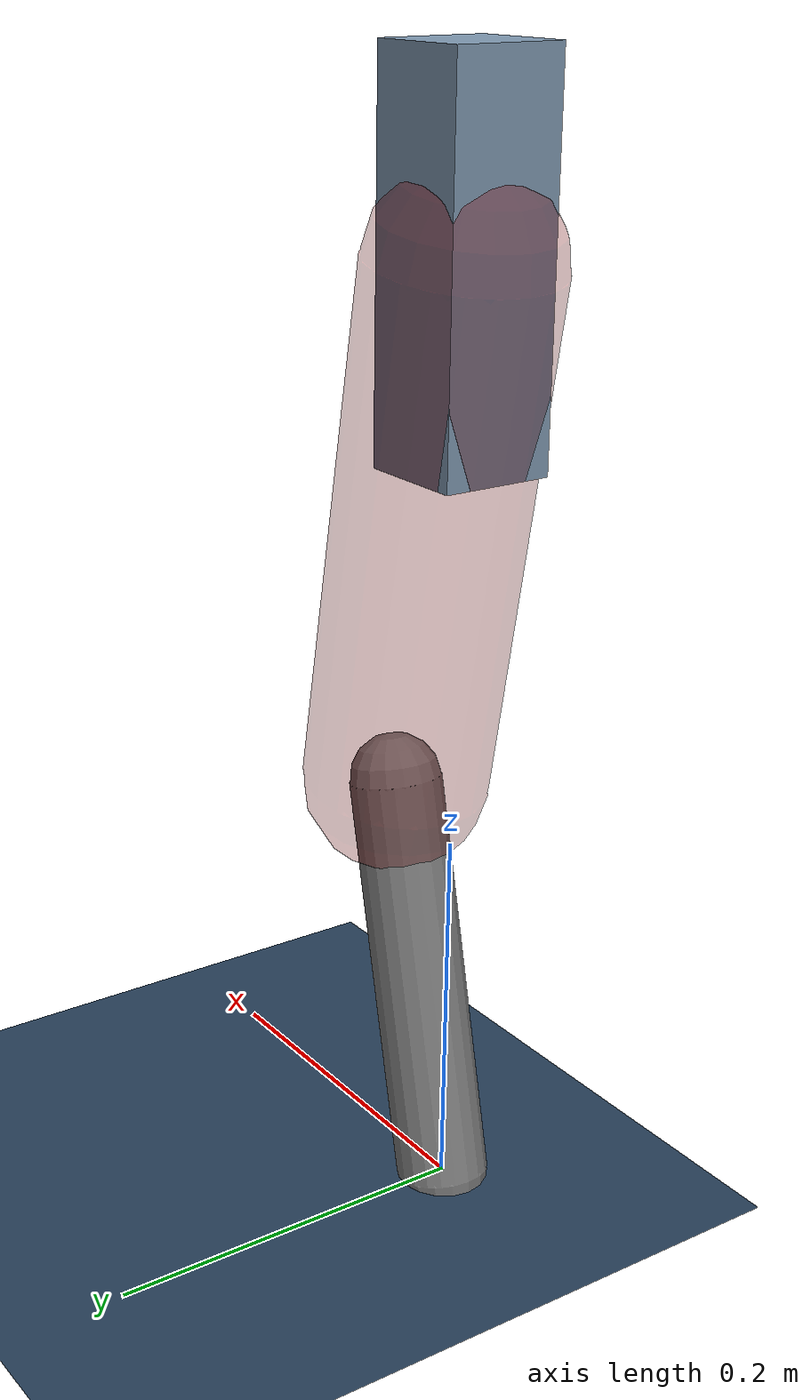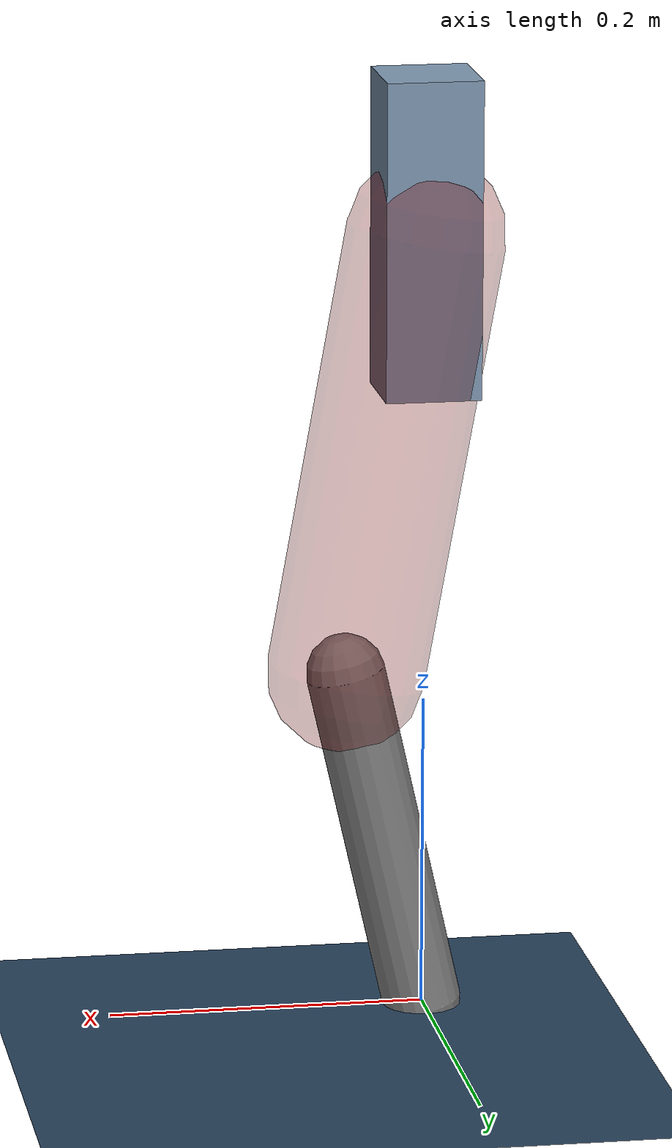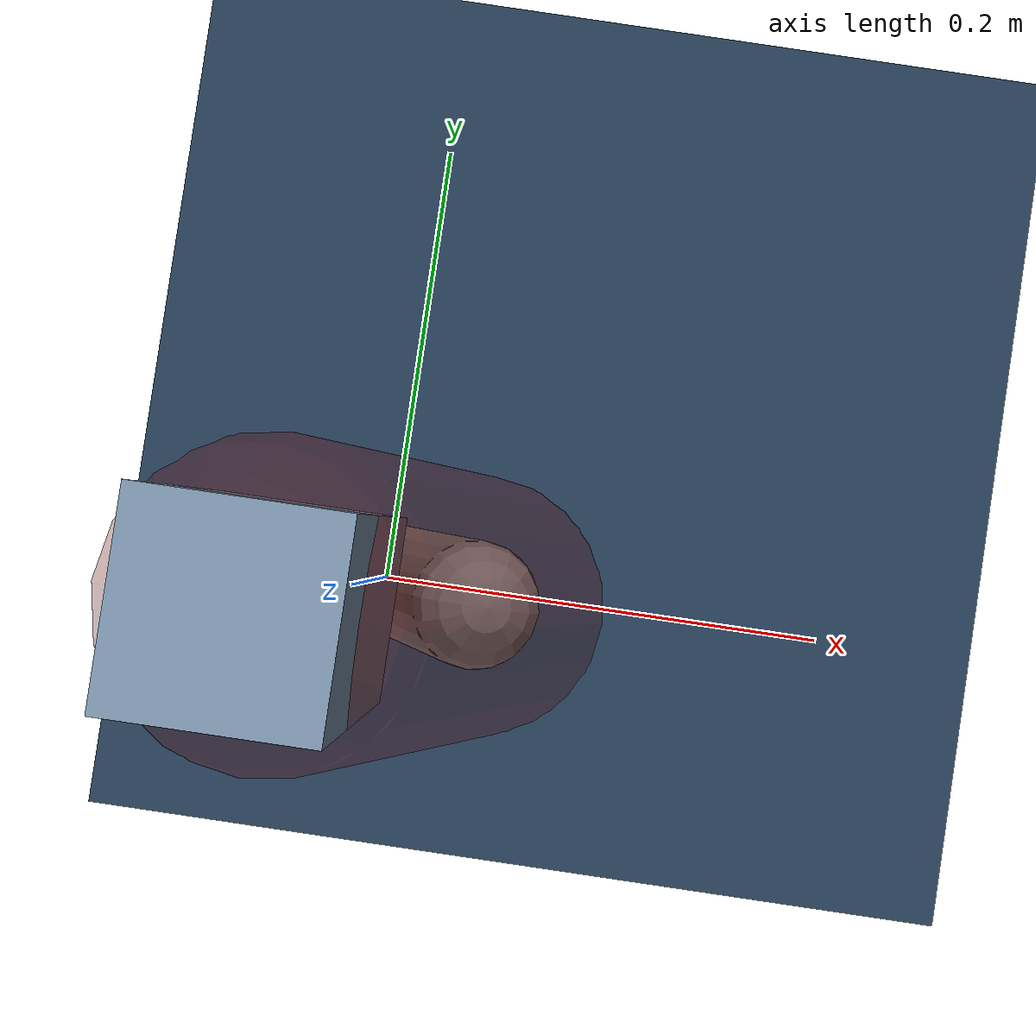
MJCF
<mujoco model="Hopper2D">
	<compiler inertiafromgeom="true" angle="radian" />
	<option timestep="0.001" integrator="implicit" cone="elliptic" solver="Newton" tolerance="1e-10" />

	<default>
		<geom contype="1" conaffinity="1" condim="3" friction="2 0.005 0.0001" solref="0.005 1" />
		<joint limited="true" damping="0.1" />
	</default>

	<asset>
		<texture name="skybox" type="skybox" builtin="gradient" rgb1=".4 .6 .8" rgb2="0 0 0" width="800" height="800" />
		<texture name="grid" type="2d" builtin="checker" rgb1=".1 .2 .3" rgb2=".2 .3 .4" width="300" height="300" mark="edge" markrgb=".2 .3 .4" />
		<material name="ground" texture="grid" texrepeat="1 1" texuniform="true" reflectance="0.1" />
		<material name="leg" rgba="0.5 0.6 0.7 1" />
	</asset>

	<worldbody>

		<geom name="floor" type="plane" size="5 5 0.25" material="ground" />

		<light directional="false" diffuse="0.8 0.8 0.8" specular="0.3 0.3 0.3" pos="0 0 2" dir="0 0 -1" />
		<light mode="targetbodycom" target="base" directional="false" diffuse="0.8 0.8 0.8" specular="0.3 0.3 0.3" pos="0 0 2" dir="0 0 -1" />

		<camera name="fixed" pos="0 -2 1" xyaxes="1 0 0 0 0 1" />
		<camera name="tracking" mode="trackcom" pos="0 -3 1" />

		<body name="root" pos="0 0 0.4989148613005415">
			<joint name="slide_x" type="slide" axis="1 0 0" range="-100 100" />
			<joint name="slide_z" type="slide" axis="0 0 1" range="0 10" />

			<body name="base" pos="0 0 0">
				<geom name="torso" type="box" size="0.03 0.03 0.1" mass="2.494" material="leg" />

				<body name="link1" pos="0 0 0" euler="0 1.3944410896917567 0">
					<joint type="hinge" axis="0 -1 0" pos="0 0 0" name="hinge1" limited="true" range="-3.14 3.14" stiffness="0" damping="0.1" />
					<geom name="thigh" type="capsule" fromto="0 0 0 0.28408245924098785 0 0" size="0.05" rgba="0.5 0 0 0.3" mass="0.9460143940265685" />

					<body name="link2" pos="0.28408245924098785 0 0" euler="0 0.3998890181151422 0">
						<joint type="hinge" axis="0 -1 0" pos="0 0 0" name="hinge2" limited="true" range="-3.14 3.14" stiffness="0" damping="0.1" />
						<geom name="shank" type="capsule" fromto="0 0 0 0.2248324020595537 0 0" size="0.025" mass="0.421665921647643" />

					</body>
				</body>
			</body>
		</body>
	</worldbody>

	<actuator>
		<motor name="torque1" joint="hinge1" ctrlrange="-108.48436111268775 108.48436111268775" ctrllimited="true" gear="1" />
		<motor name="torque2" joint="hinge2" ctrlrange="-51.85265420785222 51.85265420785222" ctrllimited="true" gear="1" />
	</actuator>
</mujoco>
